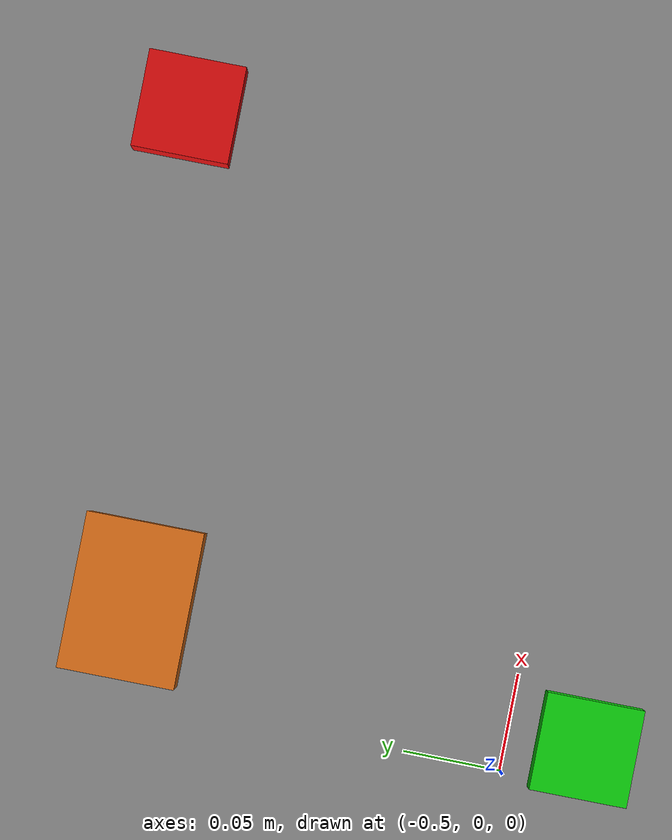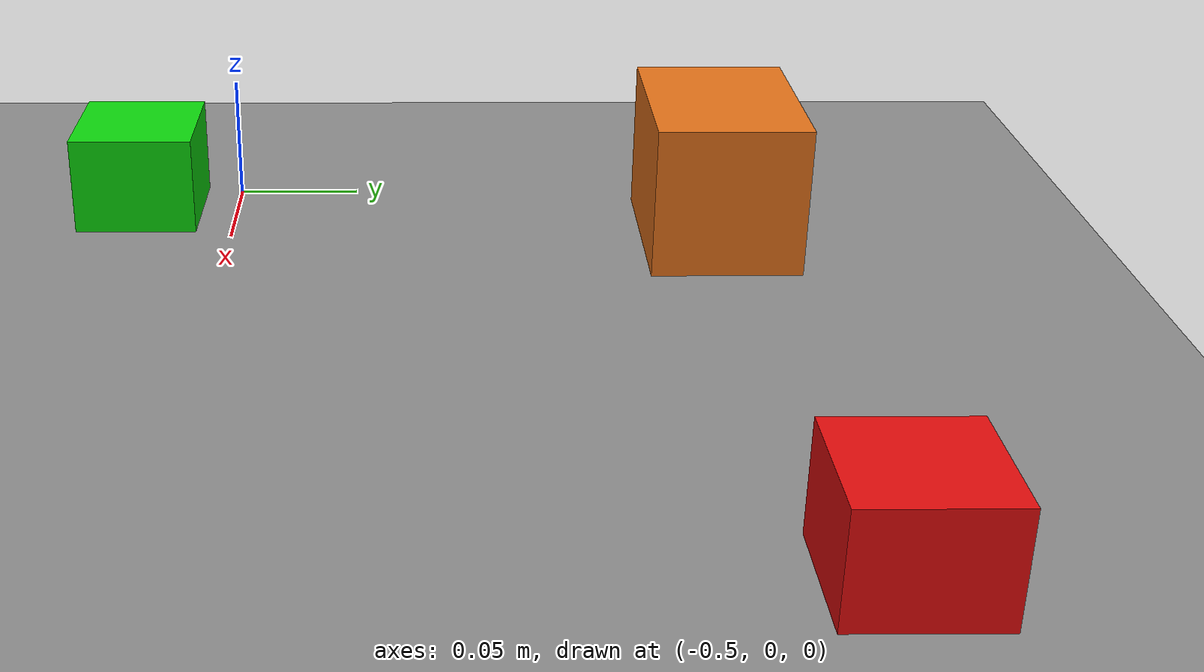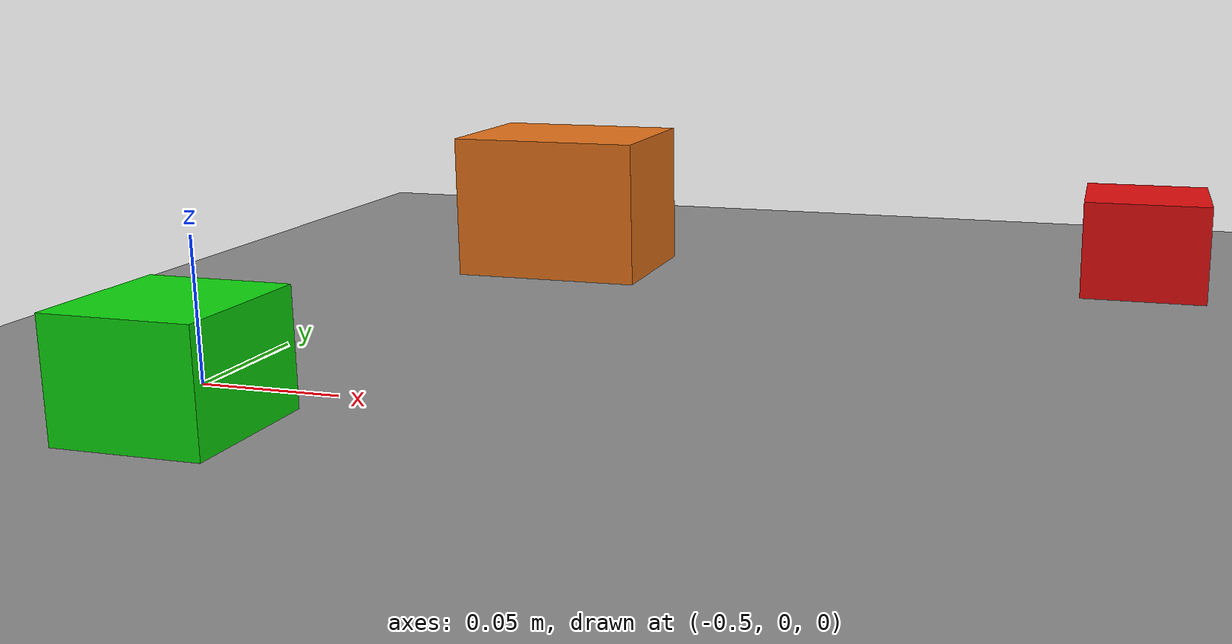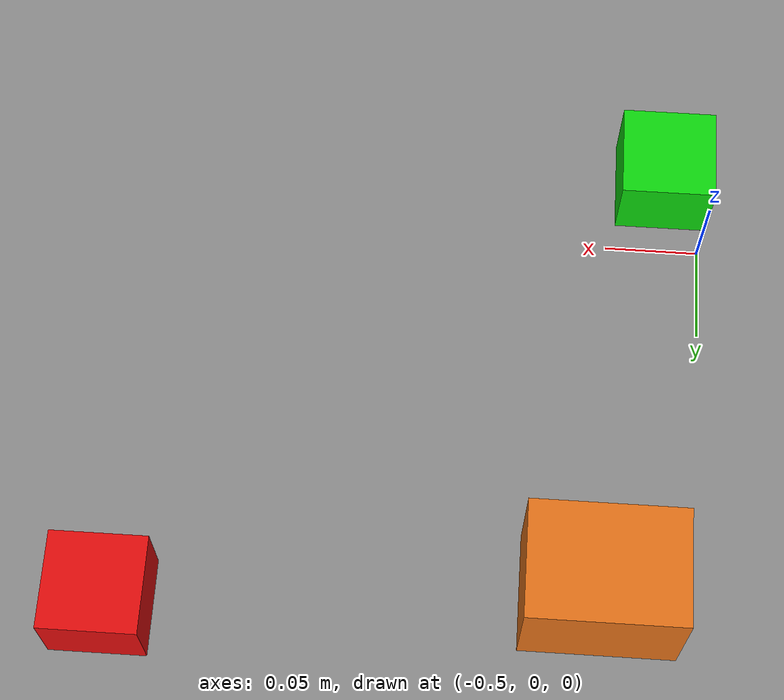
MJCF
<mujoco model="s12_3_camera_geometry">
  <statistic extent="1"/>
  <visual>
    <global offwidth="640" offheight="480"/>
    <quality offsamples="1" shadowsize="512"/>
    <map znear="0.01" zfar="3"/>
  </visual>
  <worldbody>
    <light pos="-0.35 0.1 2" dir="0 0 -1" diffuse="0.8 0.8 0.8"/>
    <!-- Identity camera rotation: +X right, +Y up, view along -Z_world. -->
    <camera name="overhead" pos="-0.35 0.10 0.80" quat="1 0 0 0" fovy="45" ipd="0"/>
    <geom name="floor" type="plane" size="1 1 0.01" rgba="0.55 0.55 0.55 1"/>
    <!-- Same object center as S12.1; wider box makes pixel checks easier. -->
    <geom name="orange_box" type="box" pos="-0.45 0.20 0.03" size="0.04 0.03 0.03"
          rgba="0.9 0.45 0.1 1"/>
    <geom name="red_marker" type="box" pos="-0.20 0.22 0.02" size="0.025 0.025 0.02"
          rgba="0.9 0.05 0.05 1"/>
    <geom name="green_marker" type="box" pos="-0.48 -0.04 0.02" size="0.025 0.025 0.02"
          rgba="0.05 0.85 0.05 1"/>
  </worldbody>
</mujoco>
